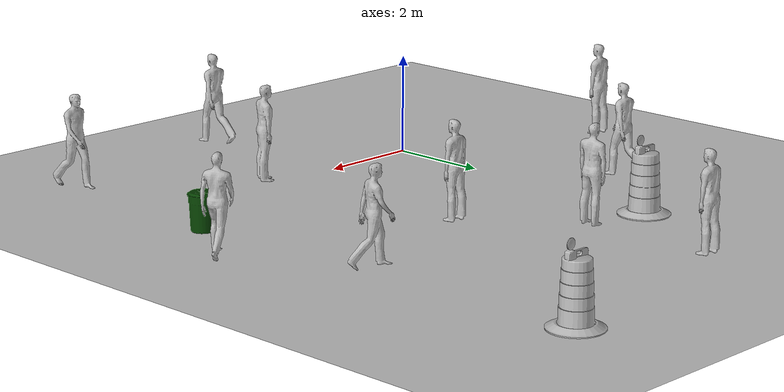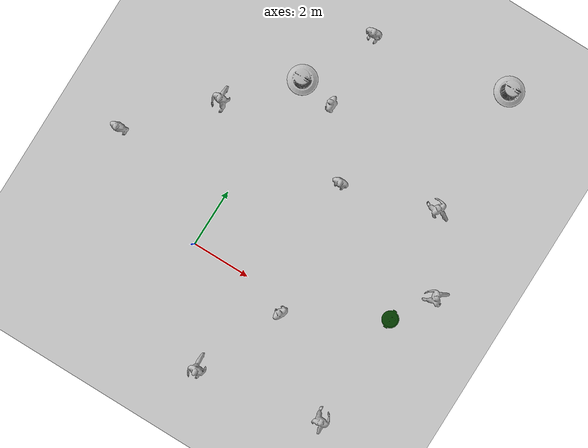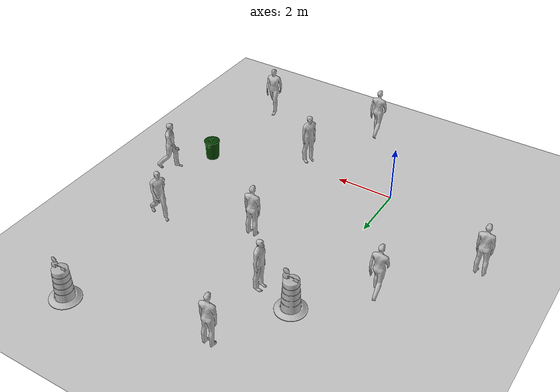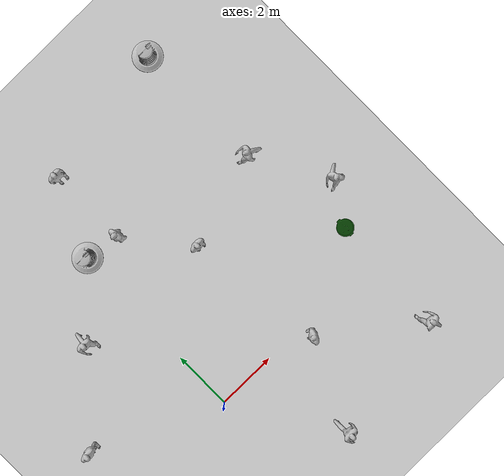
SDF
<sdf version="1.7">
 <world name="default">
  <light name="sun" type="directional">
   <pose>0 0 10 0 -0 0</pose>
   <diffuse>0.8 0.8 0.8 1</diffuse>
   <specular>0.2 0.2 0.2 1</specular>
   <attenuation>
    <range>1000</range>
    <constant>0.9</constant>
    <linear>0.01</linear>
    <quadratic>0.001</quadratic>
   </attenuation>
   <direction>-0.5 0.1 -0.9</direction>
   <spot><inner_angle>0</inner_angle><outer_angle>0</outer_angle><falloff>0</falloff></spot>
  </light>
  <model name="ground_plane">
   <static>1</static>
   <link name="link">
    <collision name="collision">
     <geometry><plane><normal>0 0 1</normal><size>100 100</size></plane></geometry>
     <surface><friction><ode><mu>100</mu><mu2>50</mu2></ode></friction></surface>
    </collision>
    <visual name="visual">
     <cast_shadows>0</cast_shadows>
     <geometry><plane><normal>0 0 1</normal><size>100 100</size></plane></geometry>
     <material>
      <script><uri>file://media/materials/scripts/gazebo.material</uri><name>Gazebo/Grey</name></script>
     </material>
    </visual>
   </link>
  </model>
  <gravity>0 0 -9.8</gravity>
  <magnetic_field>6e-06 2.3e-05 -4.2e-05</magnetic_field>
  <atmosphere type="adiabatic"/>
  <physics type="ode">
   <max_step_size>0.001</max_step_size>
   <real_time_factor>1</real_time_factor>
   <real_time_update_rate>1000</real_time_update_rate>
  </physics>
  <scene><ambient>0.4 0.4 0.4 1</ambient><background>0.7 0.7 0.7 1</background><shadows>1</shadows></scene>
  <spherical_coordinates>
   <surface_model>EARTH_WGS84</surface_model>
   <latitude_deg>0</latitude_deg>
   <longitude_deg>0</longitude_deg>
   <elevation>0</elevation>
   <heading_deg>0</heading_deg>
  </spherical_coordinates>
  <model name="person_standing">
   <link name="link">
    <inertial>
     <pose>0 -0.1 0.95 0 -0 0</pose>
     <mass>80</mass>
     <inertia><ixx>24.88</ixx><ixy>0</ixy><ixz>0</ixz><iyy>25.73</iyy><iyz>0</iyz><izz>2.48</izz></inertia>
    </inertial>
    <collision name="bottom">
     <pose>0 -0.1 0.01 0 -0 0</pose>
     <geometry><box><size>0.5 0.35 0.02</size></box></geometry>
    </collision>
    <collision name="person">
     <pose>0 0 0.02 0.04 -0 0</pose>
     <geometry><mesh><uri>model://person_standing/meshes/standing.dae</uri></mesh></geometry>
    </collision>
    <visual name="visual">
     <pose>0 0 0.02 0.04 -0 0</pose>
     <geometry><mesh><uri>model://person_standing/meshes/standing.dae</uri></mesh></geometry>
    </visual>
   </link>
   <pose>-3.97119 2.00854 -0 -1e-06 -1e-06 0.001477</pose>
  </model>
  <model name="person_walking">
   <link name="link">
    <inertial>
     <pose>0 0 0.95 0 -0 0</pose>
     <mass>80</mass>
     <inertia><ixx>27.82</ixx><ixy>0</ixy><ixz>0</ixz><iyy>24.88</iyy><iyz>0</iyz><izz>4.57</izz></inertia>
    </inertial>
    <collision name="bottom">
     <pose>0 0 0.01 0 -0 0</pose>
     <geometry><box><size>0.35 0.75 0.02</size></box></geometry>
    </collision>
    <collision name="person">
     <pose>0 0 -0.02 0 -0 0</pose>
     <geometry><mesh><uri>model://person_walking/meshes/walking.dae</uri></mesh></geometry>
    </collision>
    <visual name="visual">
     <pose>0 0 -0.02 0 -0 0</pose>
     <geometry><mesh><uri>model://person_walking/meshes/walking.dae</uri></mesh></geometry>
    </visual>
   </link>
   <pose>-1.68325 4.43405 -1e-06 -2e-06 -1e-06 -0.000993</pose>
  </model>
  <model name="person_standing_0">
   <link name="link">
    <inertial>
     <pose>0 -0.1 0.95 0 -0 0</pose>
     <mass>80</mass>
     <inertia><ixx>24.88</ixx><ixy>0</ixy><ixz>0</ixz><iyy>25.73</iyy><iyz>0</iyz><izz>2.48</izz></inertia>
    </inertial>
    <collision name="bottom">
     <pose>0 -0.1 0.01 0 -0 0</pose>
     <geometry><box><size>0.5 0.35 0.02</size></box></geometry>
    </collision>
    <collision name="person">
     <pose>0 0 0.02 0.04 -0 0</pose>
     <geometry><mesh><uri>model://person_standing/meshes/standing.dae</uri></mesh></geometry>
    </collision>
    <visual name="visual">
     <pose>0 0 0.02 0.04 -0 0</pose>
     <geometry><mesh><uri>model://person_standing/meshes/standing.dae</uri></mesh></geometry>
    </visual>
   </link>
   <pose>3.5977 -0.419395 -1e-06 -1e-06 1e-06 -2.07272</pose>
  </model>
  <model name="person_walking_0">
   <link name="link">
    <inertial>
     <pose>0 0 0.95 0 -0 0</pose>
     <mass>80</mass>
     <inertia><ixx>27.82</ixx><ixy>0</ixy><ixz>0</ixz><iyy>24.88</iyy><iyz>0</iyz><izz>4.57</izz></inertia>
    </inertial>
    <collision name="bottom">
     <pose>0 0 0.01 0 -0 0</pose>
     <geometry><box><size>0.35 0.75 0.02</size></box></geometry>
    </collision>
    <collision name="person">
     <pose>0 0 -0.02 0 -0 0</pose>
     <geometry><mesh><uri>model://person_walking/meshes/walking.dae</uri></mesh></geometry>
    </collision>
    <visual name="visual">
     <pose>0 0 -0.02 0 -0 0</pose>
     <geometry><mesh><uri>model://person_walking/meshes/walking.dae</uri></mesh></geometry>
    </visual>
   </link>
   <pose>6.43851 -2.65615 -1e-06 -2e-06 -1e-06 -2.98972</pose>
  </model>
  <model name="person_standing_1">
   <link name="link">
    <inertial>
     <pose>0 -0.1 0.95 0 -0 0</pose>
     <mass>80</mass>
     <inertia><ixx>24.88</ixx><ixy>0</ixy><ixz>0</ixz><iyy>25.73</iyy><iyz>0</iyz><izz>2.48</izz></inertia>
    </inertial>
    <collision name="bottom">
     <pose>0 -0.1 0.01 0 -0 0</pose>
     <geometry><box><size>0.5 0.35 0.02</size></box></geometry>
    </collision>
    <collision name="person">
     <pose>0 0 0.02 0.04 -0 0</pose>
     <geometry><mesh><uri>model://person_standing/meshes/standing.dae</uri></mesh></geometry>
    </collision>
    <visual name="visual">
     <pose>0 0 0.02 0.04 -0 0</pose>
     <geometry><mesh><uri>model://person_standing/meshes/standing.dae</uri></mesh></geometry>
    </visual>
   </link>
   <pose>2.95375 4.23079 0 -1e-06 1e-06 0.000131</pose>
  </model>
  <model name="person_walking_1">
   <link name="link">
    <inertial>
     <pose>0 0 0.95 0 -0 0</pose>
     <mass>80</mass>
     <inertia><ixx>27.82</ixx><ixy>0</ixy><ixz>0</ixz><iyy>24.88</iyy><iyz>0</iyz><izz>4.57</izz></inertia>
    </inertial>
    <collision name="bottom">
     <pose>0 0 0.01 0 -0 0</pose>
     <geometry><box><size>0.35 0.75 0.02</size></box></geometry>
    </collision>
    <collision name="person">
     <pose>0 0 -0.02 0 -0 0</pose>
     <geometry><mesh><uri>model://person_walking/meshes/walking.dae</uri></mesh></geometry>
    </collision>
    <visual name="visual">
     <pose>0 0 -0.02 0 -0 0</pose>
     <geometry><mesh><uri>model://person_walking/meshes/walking.dae</uri></mesh></geometry>
    </visual>
   </link>
   <pose>2.22055 -3.28886 1e-06 1e-06 1e-06 0.000237</pose>
  </model>
  <model name="person_standing_2">
   <link name="link">
    <inertial>
     <pose>0 -0.1 0.95 0 -0 0</pose>
     <mass>80</mass>
     <inertia><ixx>24.88</ixx><ixy>0</ixy><ixz>0</ixz><iyy>25.73</iyy><iyz>0</iyz><izz>2.48</izz></inertia>
    </inertial>
    <collision name="bottom">
     <pose>0 -0.1 0.01 0 -0 0</pose>
     <geometry><box><size>0.5 0.35 0.02</size></box></geometry>
    </collision>
    <collision name="person">
     <pose>0 0 0.02 0.04 -0 0</pose>
     <geometry><mesh><uri>model://person_standing/meshes/standing.dae</uri></mesh></geometry>
    </collision>
    <visual name="visual">
     <pose>0 0 0.02 0.04 -0 0</pose>
     <geometry><mesh><uri>model://person_standing/meshes/standing.dae</uri></mesh></geometry>
    </visual>
   </link>
   <pose>1.47322 6.11922 -1e-06 -1e-06 -1e-06 -1.56726</pose>
  </model>
  <model name="person_walking_2">
   <link name="link">
    <inertial>
     <pose>0 0 0.95 0 -0 0</pose>
     <mass>80</mass>
     <inertia><ixx>27.82</ixx><ixy>0</ixy><ixz>0</ixz><iyy>24.88</iyy><iyz>0</iyz><izz>4.57</izz></inertia>
    </inertial>
    <collision name="bottom">
     <pose>0 0 0.01 0 -0 0</pose>
     <geometry><box><size>0.35 0.75 0.02</size></box></geometry>
    </collision>
    <collision name="person">
     <pose>0 0 -0.02 0 -0 0</pose>
     <geometry><mesh><uri>model://person_walking/meshes/walking.dae</uri></mesh></geometry>
    </collision>
    <visual name="visual">
     <pose>0 0 -0.02 0 -0 0</pose>
     <geometry><mesh><uri>model://person_walking/meshes/walking.dae</uri></mesh></geometry>
    </visual>
   </link>
   <pose>6.06691 5.05875 -1e-06 2e-06 -2e-06 -2.04377</pose>
  </model>
  <model name="person_walking_3">
   <link name="link">
    <inertial>
     <pose>0 0 0.95 0 -0 0</pose>
     <mass>80</mass>
     <inertia><ixx>27.82</ixx><ixy>0</ixy><ixz>0</ixz><iyy>24.88</iyy><iyz>0</iyz><izz>4.57</izz></inertia>
    </inertial>
    <collision name="bottom">
     <pose>0 0 0.01 0 -0 0</pose>
     <geometry><box><size>0.35 0.75 0.02</size></box></geometry>
    </collision>
    <collision name="person">
     <pose>0 0 -0.02 0 -0 0</pose>
     <geometry><mesh><uri>model://person_walking/meshes/walking.dae</uri></mesh></geometry>
    </collision>
    <visual name="visual">
     <pose>0 0 -0.02 0 -0 0</pose>
     <geometry><mesh><uri>model://person_walking/meshes/walking.dae</uri></mesh></geometry>
    </visual>
   </link>
   <pose>7.49424 2.65368 -1e-06 -2e-06 -1e-06 -1.09718</pose>
  </model>
  <model name="person_standing_3">
   <link name="link">
    <inertial>
     <pose>0 -0.1 0.95 0 -0 0</pose>
     <mass>80</mass>
     <inertia><ixx>24.88</ixx><ixy>0</ixy><ixz>0</ixz><iyy>25.73</iyy><iyz>0</iyz><izz>2.48</izz></inertia>
    </inertial>
    <collision name="bottom">
     <pose>0 -0.1 0.01 0 -0 0</pose>
     <geometry><box><size>0.5 0.35 0.02</size></box></geometry>
    </collision>
    <collision name="person">
     <pose>0 0 0.02 0.04 -0 0</pose>
     <geometry><mesh><uri>model://person_standing/meshes/standing.dae</uri></mesh></geometry>
    </collision>
    <visual name="visual">
     <pose>0 0 0.02 0.04 -0 0</pose>
     <geometry><mesh><uri>model://person_standing/meshes/standing.dae</uri></mesh></geometry>
    </visual>
   </link>
   <pose>1.35398 8.81396 -0 1e-06 -1e-06 -0.000292</pose>
  </model>
  <model name="first_2015_trash_can">
   <link name="link">
    <inertial>
     <pose>0 0 0.3683 0 -0 0</pose>
     <mass>4.83076</mass>
     <inertia>
      <ixx>0.281534</ixx>
      <ixy>0</ixy>
      <ixz>0</ixz>
      <iyy>0.281534</iyy>
      <iyz>0</iyz>
      <izz>0.126223</izz>
     </inertia>
    </inertial>
    <visual name="visual">
     <geometry><mesh><uri>model://first_2015_trash_can/meshes/trash_can.dae</uri></mesh></geometry>
    </visual>
    <collision name="collision">
     <geometry><mesh><uri>model://first_2015_trash_can/meshes/trash_can.dae</uri></mesh></geometry>
    </collision>
   </link>
   <pose>6.62792 1.29183 -2e-06 -6e-06 1e-05 -0.000888</pose>
  </model>
  <model name="Construction Barrel">
   <link name="link">
    <inertial>
     <pose>0 0 0.4 0 -0 0</pose>
     <mass>500</mass>
     <inertia><ixx>51.2096</ixx><iyy>51.2096</iyy><izz>25</izz><ixy>0</ixy><ixz>0</ixz><iyz>0</iyz></inertia>
    </inertial>
    <collision name="collision">
     <geometry><mesh><uri>model://construction_barrel/meshes/construction_barrel.dae</uri></mesh></geometry>
    </collision>
    <visual name="visual">
     <geometry><mesh><uri>model://construction_barrel/meshes/construction_barrel.dae</uri></mesh></geometry>
    </visual>
   </link>
   <pose>0.137734 6.36773 0 0 0 -1.5e-05</pose>
  </model>
  <model name="Construction Barrel_0">
   <link name="link">
    <inertial>
     <pose>0 0 0.4 0 -0 0</pose>
     <mass>500</mass>
     <inertia><ixx>51.2096</ixx><iyy>51.2096</iyy><izz>25</izz><ixy>0</ixy><ixz>0</ixz><iyz>0</iyz></inertia>
    </inertial>
    <collision name="collision">
     <geometry><mesh><uri>model://construction_barrel/meshes/construction_barrel.dae</uri></mesh></geometry>
    </collision>
    <visual name="visual">
     <geometry><mesh><uri>model://construction_barrel/meshes/construction_barrel.dae</uri></mesh></geometry>
    </visual>
   </link>
   <pose>6.03139 9.59098 -0 1e-06 -1e-06 -1.2e-05</pose>
  </model>
 </world>
</sdf>
